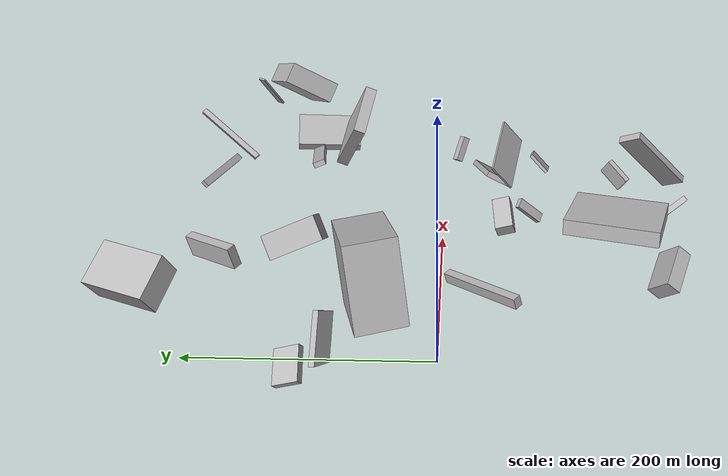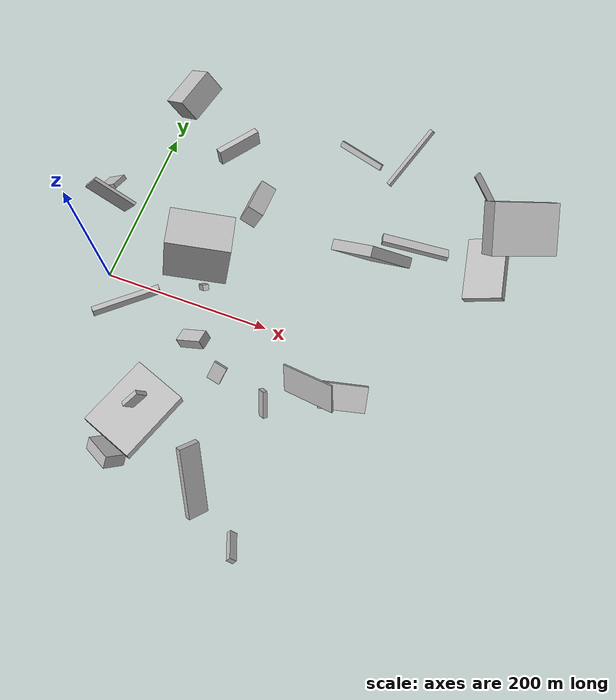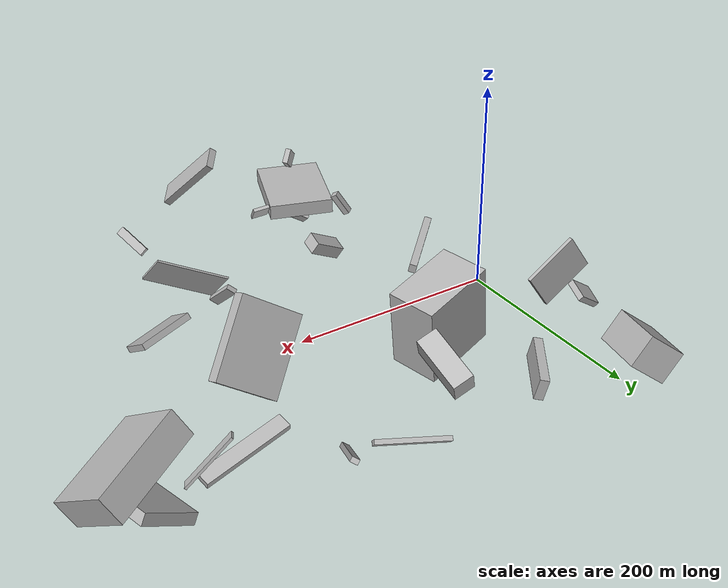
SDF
<sdf version="1.6">
 <world name="default">
  <scene>
   <sky><clouds><speed>12</speed></clouds></sky>
   <ambient>0.4 0.4 0.4 1</ambient>
   <background>0.7 0.7 0.7 1</background>
   <shadows>1</shadows>
  </scene>
  <gravity>0 0 -9.8066</gravity>
  <magnetic_field>6e-06 2.3e-05 -4.2e-05</magnetic_field>
  <physics default="0" name="default_physics" type="ode">
   <ode>
    <solver>
     <type>quick</type>
     <iters>10</iters>
     <sor>1.0</sor>
     <use_dynamic_moi_rescaling>0</use_dynamic_moi_rescaling>
    </solver>
    <constraints>
     <cfm>0</cfm>
     <erp>0.2</erp>
     <contact_max_correcting_vel>100</contact_max_correcting_vel>
     <contact_surface_layer>0.001</contact_surface_layer>
    </constraints>
   </ode>
   <max_step_size>0.004</max_step_size>
   <real_time_factor>1</real_time_factor>
   <real_time_update_rate>250</real_time_update_rate>
  </physics>
  <light name="sun" type="directional">
   <pose>0 0 10 0 0 0</pose>
   <diffuse>0.8 0.8 0.8 1</diffuse>
   <specular>0.2 0.2 0.2 1</specular>
   <attenuation>
    <range>1000</range>
    <constant>0.9</constant>
    <linear>0.01</linear>
    <quadratic>0.001</quadratic>
   </attenuation>
   <direction>-0.5 0.1 -0.9</direction>
  </light>
  <model name="building_1">
   <static>0</static>
   <pose>117.02916043578989 -151.8202860188819 73.39402411302206 -3.1305478111761276 0.031836871428708564 1.2273127030422863</pose>
   <link name="link">
    <gravity>0</gravity>
    <pose>0 0 7.0 0 0 0</pose>
    <collision name="collision"><geometry><box><size>80 61 14</size></box></geometry></collision>
    <visual name="visual">
     <cast_shadows>0</cast_shadows>
     <geometry><box><size>80 61 14</size></box></geometry>
     <material>
      <script>
       <uri>model://HANNAS_wall/materials/scripts</uri>
       <uri>model://HANNAS_wall/materials/textures</uri>
       <name>vrc/HANNAS_wall</name>
      </script>
     </material>
    </visual>
   </link>
  </model>
  <model name="building_2">
   <static>0</static>
   <pose>-50.909993591848234 104.76248300531205 17.33685658800148 0.9177358789561453 0.3504813790643507 1.397761355480864</pose>
   <link name="link">
    <gravity>0</gravity>
    <pose>0 0 13.5 0 0 0</pose>
    <collision name="collision"><geometry><box><size>21 6 27</size></box></geometry></collision>
    <visual name="visual">
     <cast_shadows>0</cast_shadows>
     <geometry><box><size>21 6 27</size></box></geometry>
     <material>
      <script>
       <uri>model://HANNAS_wall/materials/scripts</uri>
       <uri>model://HANNAS_wall/materials/textures</uri>
       <name>vrc/HANNAS_wall</name>
      </script>
     </material>
    </visual>
   </link>
  </model>
  <model name="building_3">
   <static>0</static>
   <pose>270.920813817496 99.05142544884953 67.70173607919918 0.6067465354723234 0.8348334866853645 0.569772472181945</pose>
   <link name="link">
    <gravity>0</gravity>
    <pose>0 0 28.5 0 0 0</pose>
    <collision name="collision"><geometry><box><size>71 12 57</size></box></geometry></collision>
    <visual name="visual">
     <cast_shadows>0</cast_shadows>
     <geometry><box><size>71 12 57</size></box></geometry>
     <material>
      <script>
       <uri>model://HANNAS_wall/materials/scripts</uri>
       <uri>model://HANNAS_wall/materials/textures</uri>
       <name>vrc/HANNAS_wall</name>
      </script>
     </material>
    </visual>
   </link>
  </model>
  <model name="building_4">
   <static>0</static>
   <pose>48.590789612851296 -36.456246409328244 38.864785841463025 1.7946781921946895 -0.13599540109342895 -2.3694359252970014</pose>
   <link name="link">
    <gravity>0</gravity>
    <pose>0 0 3.5 0 0 0</pose>
    <collision name="collision"><geometry><box><size>78 9 7</size></box></geometry></collision>
    <visual name="visual">
     <cast_shadows>0</cast_shadows>
     <geometry><box><size>78 9 7</size></box></geometry>
     <material>
      <script>
       <uri>model://HANNAS_wall/materials/scripts</uri>
       <uri>model://HANNAS_wall/materials/textures</uri>
       <name>vrc/HANNAS_wall</name>
      </script>
     </material>
    </visual>
   </link>
  </model>
  <model name="building_5">
   <static>0</static>
   <pose>149.05665336017148 134.20035553293502 28.16940376736182 1.1502799587663801 -0.3999975350374625 -1.5019304995935192</pose>
   <link name="link">
    <gravity>0</gravity>
    <pose>0 0 10.0 0 0 0</pose>
    <collision name="collision"><geometry><box><size>53 24 20</size></box></geometry></collision>
    <visual name="visual">
     <cast_shadows>0</cast_shadows>
     <geometry><box><size>53 24 20</size></box></geometry>
     <material>
      <script>
       <uri>model://HANNAS_wall/materials/scripts</uri>
       <uri>model://HANNAS_wall/materials/textures</uri>
       <name>vrc/HANNAS_wall</name>
      </script>
     </material>
    </visual>
   </link>
  </model>
  <model name="building_6">
   <static>0</static>
   <pose>236.03196746684642 -90.12340971709236 19.264623425852765 -2.329976762658263 0.4262130309000391 0.7356528159055635</pose>
   <link name="link">
    <gravity>0</gravity>
    <pose>0 0 5.0 0 0 0</pose>
    <collision name="collision"><geometry><box><size>5 32 10</size></box></geometry></collision>
    <visual name="visual">
     <cast_shadows>0</cast_shadows>
     <geometry><box><size>5 32 10</size></box></geometry>
     <material>
      <script>
       <uri>model://HANNAS_wall/materials/scripts</uri>
       <uri>model://HANNAS_wall/materials/textures</uri>
       <name>vrc/HANNAS_wall</name>
      </script>
     </material>
    </visual>
   </link>
  </model>
  <model name="building_7">
   <static>0</static>
   <pose>413.8045281335776 182.84653918868094 32.4483861081422 1.7362454857998948 1.0454740109208078 0.3253318768952904</pose>
   <link name="link">
    <gravity>0</gravity>
    <pose>0 0 37.5 0 0 0</pose>
    <collision name="collision"><geometry><box><size>10 48 75</size></box></geometry></collision>
    <visual name="visual">
     <cast_shadows>0</cast_shadows>
     <geometry><box><size>10 48 75</size></box></geometry>
     <material>
      <script>
       <uri>model://HANNAS_wall/materials/scripts</uri>
       <uri>model://HANNAS_wall/materials/textures</uri>
       <name>vrc/HANNAS_wall</name>
      </script>
     </material>
    </visual>
   </link>
  </model>
  <model name="building_8">
   <static>0</static>
   <pose>98.55944272849474 66.22571309772363 63.618318027473435 -3.067428399109171 -0.17494763571601427 -2.8800444377442016</pose>
   <link name="link">
    <gravity>0</gravity>
    <pose>0 0 40.0 0 0 0</pose>
    <collision name="collision"><geometry><box><size>76 47 80</size></box></geometry></collision>
    <visual name="visual">
     <cast_shadows>0</cast_shadows>
     <geometry><box><size>76 47 80</size></box></geometry>
     <material>
      <script>
       <uri>model://HANNAS_wall/materials/scripts</uri>
       <uri>model://HANNAS_wall/materials/textures</uri>
       <name>vrc/HANNAS_wall</name>
      </script>
     </material>
    </visual>
   </link>
  </model>
  <model name="building_9">
   <static>0</static>
   <pose>138.1295449336563 -54.41162512622825 60.670897485802215 -2.6361676431110883 -0.2756104590654362 -1.6424658416836815</pose>
   <link name="link">
    <gravity>0</gravity>
    <pose>0 0 6.0 0 0 0</pose>
    <collision name="collision"><geometry><box><size>16 32 12</size></box></geometry></collision>
    <visual name="visual">
     <cast_shadows>0</cast_shadows>
     <geometry><box><size>16 32 12</size></box></geometry>
     <material>
      <script>
       <uri>model://HANNAS_wall/materials/scripts</uri>
       <uri>model://HANNAS_wall/materials/textures</uri>
       <name>vrc/HANNAS_wall</name>
      </script>
     </material>
    </visual>
   </link>
  </model>
  <model name="building_10">
   <static>0</static>
   <pose>88.24802190868559 197.43133827485192 43.461134878765655 1.3663604350976866 0.07685313273934315 0.9820144851646468</pose>
   <link name="link">
    <gravity>0</gravity>
    <pose>0 0 4.0 0 0 0</pose>
    <collision name="collision"><geometry><box><size>55 20 8</size></box></geometry></collision>
    <visual name="visual">
     <cast_shadows>0</cast_shadows>
     <geometry><box><size>55 20 8</size></box></geometry>
     <material>
      <script>
       <uri>model://HANNAS_wall/materials/scripts</uri>
       <uri>model://HANNAS_wall/materials/textures</uri>
       <name>vrc/HANNAS_wall</name>
      </script>
     </material>
    </visual>
   </link>
  </model>
  <model name="building_11">
   <static>0</static>
   <pose>376.1404103326639 213.7296937584522 110.90357466102566 2.4202508464478045 -0.08234419633535654 1.0890349040123433</pose>
   <link name="link">
    <gravity>0</gravity>
    <pose>0 0 25.5 0 0 0</pose>
    <collision name="collision"><geometry><box><size>8 2 51</size></box></geometry></collision>
    <visual name="visual">
     <cast_shadows>0</cast_shadows>
     <geometry><box><size>8 2 51</size></box></geometry>
     <material>
      <script>
       <uri>model://HANNAS_wall/materials/scripts</uri>
       <uri>model://HANNAS_wall/materials/textures</uri>
       <name>vrc/HANNAS_wall</name>
      </script>
     </material>
    </visual>
   </link>
  </model>
  <model name="building_12">
   <static>0</static>
   <pose>95.33604711053466 -202.31671573020694 21.904432423425803 -0.7877849040148719 -0.4714121636718353 -0.44791880915632243</pose>
   <link name="link">
    <gravity>0</gravity>
    <pose>0 0 7.0 0 0 0</pose>
    <collision name="collision"><geometry><box><size>40 24 14</size></box></geometry></collision>
    <visual name="visual">
     <cast_shadows>0</cast_shadows>
     <geometry><box><size>40 24 14</size></box></geometry>
     <material>
      <script>
       <uri>model://HANNAS_wall/materials/scripts</uri>
       <uri>model://HANNAS_wall/materials/textures</uri>
       <name>vrc/HANNAS_wall</name>
      </script>
     </material>
    </visual>
   </link>
  </model>
  <model name="building_13">
   <static>0</static>
   <pose>248.25488360773593 -59.98749760505829 44.904105844179725 1.043755208355371 0.5086946982270735 1.0689298863171182</pose>
   <link name="link">
    <gravity>0</gravity>
    <pose>0 0 34.0 0 0 0</pose>
    <collision name="collision"><geometry><box><size>2 33 68</size></box></geometry></collision>
    <visual name="visual">
     <cast_shadows>0</cast_shadows>
     <geometry><box><size>2 33 68</size></box></geometry>
     <material>
      <script>
       <uri>model://HANNAS_wall/materials/scripts</uri>
       <uri>model://HANNAS_wall/materials/textures</uri>
       <name>vrc/HANNAS_wall</name>
      </script>
     </material>
    </visual>
   </link>
  </model>
  <model name="building_14">
   <static>0</static>
   <pose>334.08786428380796 142.8890396968025 29.581624561383954 0.18209139109521008 0.32532913835197974 1.7866596481964068</pose>
   <link name="link">
    <gravity>0</gravity>
    <pose>0 0 3.0 0 0 0</pose>
    <collision name="collision"><geometry><box><size>13 80 6</size></box></geometry></collision>
    <visual name="visual">
     <cast_shadows>0</cast_shadows>
     <geometry><box><size>13 80 6</size></box></geometry>
     <material>
      <script>
       <uri>model://HANNAS_wall/materials/scripts</uri>
       <uri>model://HANNAS_wall/materials/textures</uri>
       <name>vrc/HANNAS_wall</name>
      </script>
     </material>
    </visual>
   </link>
  </model>
  <model name="building_15">
   <static>0</static>
   <pose>140.86874572106217 -14.058392201106361 109.63956422327158 0.5330569763310774 0.22357047986059017 0.6404684689602778</pose>
   <link name="link">
    <gravity>0</gravity>
    <pose>0 0 10.5 0 0 0</pose>
    <collision name="collision"><geometry><box><size>6 6 21</size></box></geometry></collision>
    <visual name="visual">
     <cast_shadows>0</cast_shadows>
     <geometry><box><size>6 6 21</size></box></geometry>
     <material>
      <script>
       <uri>model://HANNAS_wall/materials/scripts</uri>
       <uri>model://HANNAS_wall/materials/textures</uri>
       <name>vrc/HANNAS_wall</name>
      </script>
     </material>
    </visual>
   </link>
  </model>
  <model name="building_16">
   <static>0</static>
   <pose>-50.520974256544605 83.37748194406907 56.512193958333256 2.1609843592648894 -0.015295549531019798 1.5225277712133714</pose>
   <link name="link">
    <gravity>0</gravity>
    <pose>0 0 27.5 0 0 0</pose>
    <collision name="collision"><geometry><box><size>4 38 55</size></box></geometry></collision>
    <visual name="visual">
     <cast_shadows>0</cast_shadows>
     <geometry><box><size>4 38 55</size></box></geometry>
     <material>
      <script>
       <uri>model://HANNAS_wall/materials/scripts</uri>
       <uri>model://HANNAS_wall/materials/textures</uri>
       <name>vrc/HANNAS_wall</name>
      </script>
     </material>
    </visual>
   </link>
  </model>
  <model name="building_17">
   <static>0</static>
   <pose>117.96176554696697 -155.25233765954755 98.3695095057858 0.24382996637775695 -0.926755113721948 -2.582847799730086</pose>
   <link name="link">
    <gravity>0</gravity>
    <pose>0 0 11.0 0 0 0</pose>
    <collision name="collision"><geometry><box><size>14 5 22</size></box></geometry></collision>
    <visual name="visual">
     <cast_shadows>0</cast_shadows>
     <geometry><box><size>14 5 22</size></box></geometry>
     <material>
      <script>
       <uri>model://HANNAS_wall/materials/scripts</uri>
       <uri>model://HANNAS_wall/materials/textures</uri>
       <name>vrc/HANNAS_wall</name>
      </script>
     </material>
    </visual>
   </link>
  </model>
  <model name="building_18">
   <static>0</static>
   <pose>339.0737275784162 -46.46689758394061 18.808578346961475 1.305680507120878 -1.0174782838370398 -1.0819543548565278</pose>
   <link name="link">
    <gravity>0</gravity>
    <pose>0 0 26.5 0 0 0</pose>
    <collision name="collision"><geometry><box><size>6 30 53</size></box></geometry></collision>
    <visual name="visual">
     <cast_shadows>0</cast_shadows>
     <geometry><box><size>6 30 53</size></box></geometry>
     <material>
      <script>
       <uri>model://HANNAS_wall/materials/scripts</uri>
       <uri>model://HANNAS_wall/materials/textures</uri>
       <name>vrc/HANNAS_wall</name>
      </script>
     </material>
    </visual>
   </link>
  </model>
  <model name="building_19">
   <static>0</static>
   <pose>262.9454390413438 -255.20349979059287 17.24644683854739 -2.2235958240202294 0.670597475872337 -0.02709352890359207</pose>
   <link name="link">
    <gravity>0</gravity>
    <pose>0 0 17.0 0 0 0</pose>
    <collision name="collision"><geometry><box><size>9 6 34</size></box></geometry></collision>
    <visual name="visual">
     <cast_shadows>0</cast_shadows>
     <geometry><box><size>9 6 34</size></box></geometry>
     <material>
      <script>
       <uri>model://HANNAS_wall/materials/scripts</uri>
       <uri>model://HANNAS_wall/materials/textures</uri>
       <name>vrc/HANNAS_wall</name>
      </script>
     </material>
    </visual>
   </link>
  </model>
  <model name="building_20">
   <static>0</static>
   <pose>239.12736112566347 229.81947529698917 57.68787266719666 2.9767996419831575 0.7595807885779694 1.1110289773941775</pose>
   <link name="link">
    <gravity>0</gravity>
    <pose>0 0 3.5 0 0 0</pose>
    <collision name="collision"><geometry><box><size>4 60 7</size></box></geometry></collision>
    <visual name="visual">
     <cast_shadows>0</cast_shadows>
     <geometry><box><size>4 60 7</size></box></geometry>
     <material>
      <script>
       <uri>model://HANNAS_wall/materials/scripts</uri>
       <uri>model://HANNAS_wall/materials/textures</uri>
       <name>vrc/HANNAS_wall</name>
      </script>
     </material>
    </visual>
   </link>
  </model>
  <model name="building_21">
   <static>0</static>
   <pose>25.39667271013531 260.4310760739379 64.39675709122994 1.749960360964568 0.9222960371081615 -0.1308054138692579</pose>
   <link name="link">
    <gravity>0</gravity>
    <pose>0 0 25.5 0 0 0</pose>
    <collision name="collision"><geometry><box><size>29 36 51</size></box></geometry></collision>
    <visual name="visual">
     <cast_shadows>0</cast_shadows>
     <geometry><box><size>29 36 51</size></box></geometry>
     <material>
      <script>
       <uri>model://HANNAS_wall/materials/scripts</uri>
       <uri>model://HANNAS_wall/materials/textures</uri>
       <name>vrc/HANNAS_wall</name>
      </script>
     </material>
    </visual>
   </link>
  </model>
  <model name="building_22">
   <static>0</static>
   <pose>435.3233430853813 182.936511086707 77.74631795614687 -0.5631619761921803 -0.2569303957440941 -2.6740589041757388</pose>
   <link name="link">
    <gravity>0</gravity>
    <pose>0 0 12.0 0 0 0</pose>
    <collision name="collision"><geometry><box><size>80 59 24</size></box></geometry></collision>
    <visual name="visual">
     <cast_shadows>0</cast_shadows>
     <geometry><box><size>80 59 24</size></box></geometry>
     <material>
      <script>
       <uri>model://HANNAS_wall/materials/scripts</uri>
       <uri>model://HANNAS_wall/materials/textures</uri>
       <name>vrc/HANNAS_wall</name>
      </script>
     </material>
    </visual>
   </link>
  </model>
  <model name="building_23">
   <static>0</static>
   <pose>203.550686909713 -199.76362352951182 82.83335495492216 0.8602813263540537 0.4391471970282079 0.8969030854333183</pose>
   <link name="link">
    <gravity>0</gravity>
    <pose>0 0 3.5 0 0 0</pose>
    <collision name="collision"><geometry><box><size>22 80 7</size></box></geometry></collision>
    <visual name="visual">
     <cast_shadows>0</cast_shadows>
     <geometry><box><size>22 80 7</size></box></geometry>
     <material>
      <script>
       <uri>model://HANNAS_wall/materials/scripts</uri>
       <uri>model://HANNAS_wall/materials/textures</uri>
       <name>vrc/HANNAS_wall</name>
      </script>
     </material>
    </visual>
   </link>
  </model>
  <model name="building_24">
   <static>0</static>
   <pose>187.6710122844904 -92.194830602189 90.37691276294613 -2.9761183892966607 -0.771756998716861 1.2625383726727966</pose>
   <link name="link">
    <gravity>0</gravity>
    <pose>0 0 1.5 0 0 0</pose>
    <collision name="collision"><geometry><box><size>21 15 3</size></box></geometry></collision>
    <visual name="visual">
     <cast_shadows>0</cast_shadows>
     <geometry><box><size>21 15 3</size></box></geometry>
     <material>
      <script>
       <uri>model://HANNAS_wall/materials/scripts</uri>
       <uri>model://HANNAS_wall/materials/textures</uri>
       <name>vrc/HANNAS_wall</name>
      </script>
     </material>
    </visual>
   </link>
  </model>
  <model name="building_25">
   <static>0</static>
   <pose>295.2366396331644 232.2734746167492 74.5788400730614 2.6145533112690447 -0.5458732818554265 1.1181918615739346</pose>
   <link name="link">
    <gravity>0</gravity>
    <pose>0 0 2.0 0 0 0</pose>
    <collision name="collision"><geometry><box><size>80 6 4</size></box></geometry></collision>
    <visual name="visual">
     <cast_shadows>0</cast_shadows>
     <geometry><box><size>80 6 4</size></box></geometry>
     <material>
      <script>
       <uri>model://HANNAS_wall/materials/scripts</uri>
       <uri>model://HANNAS_wall/materials/textures</uri>
       <name>vrc/HANNAS_wall</name>
      </script>
     </material>
    </visual>
   </link>
  </model>
 </world>
</sdf>
